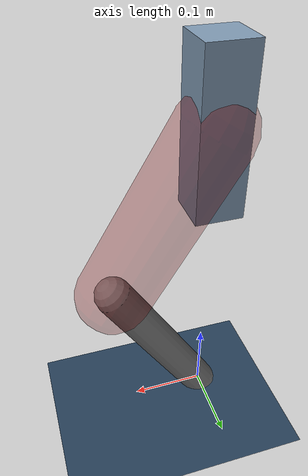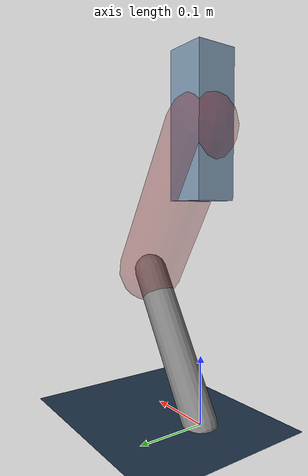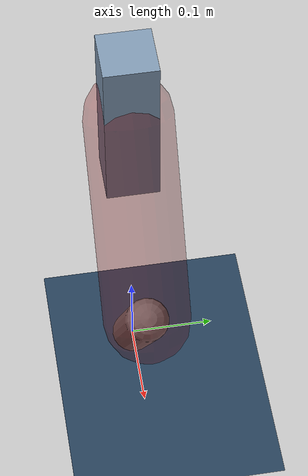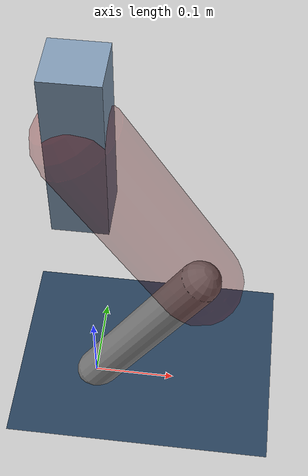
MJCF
<mujoco model="Hopper2D">
	<compiler inertiafromgeom="true" angle="radian" />
	<option timestep="0.001" integrator="implicit" cone="elliptic" solver="Newton" tolerance="1e-10" />

	<default>
		<geom contype="1" conaffinity="1" condim="3" friction="2 0.005 0.0001" solref="0.005 1" />
		<joint limited="true" damping="0.1" />
	</default>

	<asset>
		<texture name="skybox" type="skybox" builtin="gradient" rgb1=".4 .6 .8" rgb2="0 0 0" width="800" height="800" />
		<texture name="grid" type="2d" builtin="checker" rgb1=".1 .2 .3" rgb2=".2 .3 .4" width="300" height="300" mark="edge" markrgb=".2 .3 .4" />
		<material name="ground" texture="grid" texrepeat="1 1" texuniform="true" reflectance="0.1" />
		<material name="leg" rgba="0.5 0.6 0.7 1" />
	</asset>

	<worldbody>

		<geom name="floor" type="plane" size="5 5 0.25" material="ground" />

		<light directional="false" diffuse="0.8 0.8 0.8" specular="0.3 0.3 0.3" pos="0 0 2" dir="0 0 -1" />
		<light mode="targetbodycom" target="base" directional="false" diffuse="0.8 0.8 0.8" specular="0.3 0.3 0.3" pos="0 0 2" dir="0 0 -1" />

		<camera name="fixed" pos="0 -2 1" xyaxes="1 0 0 0 0 1" />
		<camera name="tracking" mode="trackcom" pos="0 -3 1" />

		<body name="root" pos="0 0 0.41698882409453525">
			<joint name="slide_x" type="slide" axis="1 0 0" range="-100 100" />
			<joint name="slide_z" type="slide" axis="0 0 1" range="0 10" />

			<body name="base" pos="0 0 0">
				<geom name="torso" type="box" size="0.03 0.03 0.1" mass="1.959" material="leg" />

				<body name="link1" pos="0 0 0" euler="0 1.0231224948954167 0">
					<joint type="hinge" axis="0 -1 0" pos="0 0 0" name="hinge1" limited="true" range="-3.14 3.14" stiffness="0" damping="0.1" />
					<geom name="thigh" type="capsule" fromto="0 0 0 0.2427192200267872 0 0" size="0.05" rgba="0.5 0 0 0.3" mass="0.8375699720696468" />

					<body name="link2" pos="0.2427192200267872 0 0" euler="0 1.0899226048300241 0">
						<joint type="hinge" axis="0 -1 0" pos="0 0 0" name="hinge2" limited="true" range="-3.14 3.14" stiffness="0" damping="0.1" />
						<geom name="shank" type="capsule" fromto="0 0 0 0.2449011757078004 0 0" size="0.025" mass="0.4383209405662403" />

					</body>
				</body>
			</body>
		</body>
	</worldbody>

	<actuator>
		<motor name="torque1" joint="hinge1" ctrlrange="-77.62738549319933 77.62738549319933" ctrllimited="true" gear="1" />
		<motor name="torque2" joint="hinge2" ctrlrange="-30.082790335990122 30.082790335990122" ctrllimited="true" gear="1" />
	</actuator>
</mujoco>
